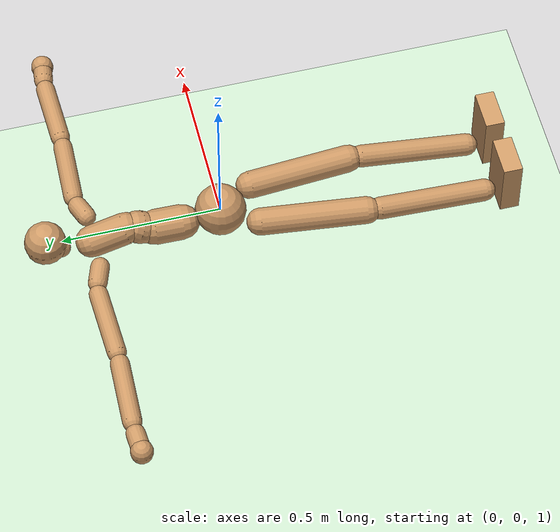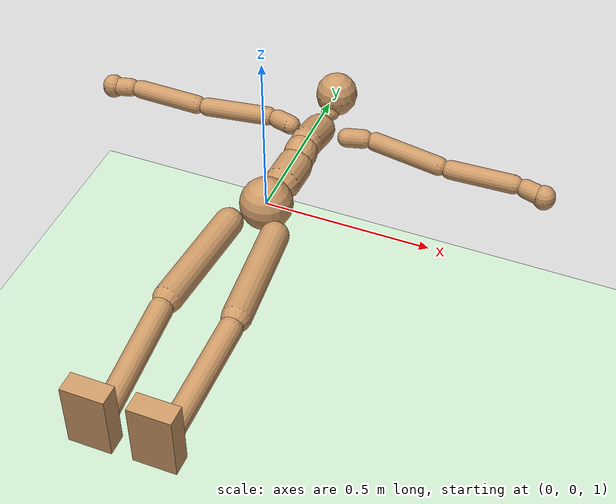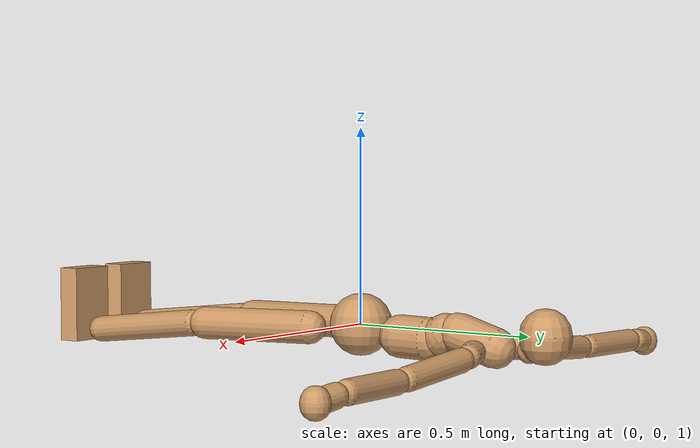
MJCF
<mujoco model="humanoid">
  <compiler angle="degree" inertiafromgeom="true" coordinate="global"/>
  <include file="./common/materials.xml"/>
  <visual>
    <headlight ambient=".4 .4 .4" diffuse=".8 .8 .8" specular="0.1 0.1 0.1"/>
    <map znear=".01"/>
    <quality shadowsize="2048"/>
  </visual>
  <default>
    <joint damping="0.0" armature="0.01" stiffness="0.0" limited="true"/>
    <geom conaffinity="7" condim="1" contype="7" margin="0.001" material="self" rgba="0.8 0.6 .4 1"/>
  </default>
  <statistic extent="3" center="0 0 1"/>
  <option timestep="0.00222222222"/>
  <asset>
    <texture type="skybox" file="./common/sky1.png" gridsize="3 4" gridlayout=".U..LFRB.D.." width="8192" height="8192"/>
    <texture builtin="flat" height="1278" mark="cross" markrgb="1 1 1" name="texgeom" random="0.01" rgb1=".8 .6 .4" rgb2=".8 .6 .4" type="cube" width="127"/>
  </asset>
  <worldbody>
    <light cutoff="100" diffuse="1 1 1" dir="-0 0 -1.3" directional="true" exponent="1" pos="0 0 1.3" specular=".1 .1 .1"/>
    <geom condim="3" friction="1. .1 .1" material="grid" name="floor" pos="0 0 0" rgba=".8 .9 .8 1" size="100 100 .2" type="plane"/>
    <body name="Pelvis" pos="0.0000 0.0000 1.0000" user="-0.0001 -0.0251 0.9883" >
      <joint name="Pelvis" pos="0.0000 0.0000 1.0000" limited="false" type="free" armature="0" damping="0" stiffness="0"/>
      <geom size="0.0800" type="sphere" pos="0.0000 0.0000 1.0000" contype="0" conaffinity="1"/>
      <body name="L_Hip" pos="0.0714 -0.0896 0.9920" user="0.1020 -0.4538 0.9853">
        <joint name="L_Hip_z" type="hinge" pos="0.0714 -0.0896 0.9920" axis="0.0000 0.0000 1.0000" range="-180.0000 180.0000"/>
        <joint name="L_Hip_y" type="hinge" pos="0.0714 -0.0896 0.9920" axis="0.0000 1.0000 0.0000" range="-180.0000 180.0000"/>
        <joint name="L_Hip_x" type="hinge" pos="0.0714 -0.0896 0.9920" axis="1.0000 0.0000 0.0000" range="-180.0000 180.0000"/>
        <geom size="0.0430" type="capsule" fromto="0.0730 -0.1095 0.9916 0.1004 -0.4339 0.9856" contype="0" conaffinity="1"/>
        <body name="L_Knee" pos="0.1020 -0.4538 0.9853" user="0.0905 -0.8371 0.9418">
          <joint name="L_Knee_z" type="hinge" pos="0.1020 -0.4538 0.9853" axis="0.0000 0.0000 1.0000" range="-180.0000 180.0000"/>
          <joint name="L_Knee_y" type="hinge" pos="0.1020 -0.4538 0.9853" axis="0.0000 1.0000 0.0000" range="-180.0000 180.0000"/>
          <joint name="L_Knee_x" type="hinge" pos="0.1020 -0.4538 0.9853" axis="1.0000 0.0000 0.0000" range="-180.0000 180.0000"/>
          <geom size="0.0350" type="capsule" fromto="0.1014 -0.4737 0.9830 0.0911 -0.8173 0.9440" contype="0" conaffinity="1"/>
          <body name="L_Ankle" pos="0.0905 -0.8371 0.9418" user="0.1138 -0.8918 1.0561">
            <joint name="L_Ankle_z" type="hinge" pos="0.0905 -0.8371 0.9418" axis="0.0000 0.0000 1.0000" range="-180.0000 180.0000"/>
            <joint name="L_Ankle_y" type="hinge" pos="0.0905 -0.8371 0.9418" axis="0.0000 1.0000 0.0000" range="-180.0000 180.0000"/>
            <joint name="L_Ankle_x" type="hinge" pos="0.0905 -0.8371 0.9418" axis="1.0000 0.0000 0.0000" range="-180.0000 180.0000"/>
            <geom pos="0.0905 -0.8851 1.0118" size="0.0620 0.1000 0.0300" quat="0.7071 -0.7071 -0.0000 -0.0000" type="box" contype="0" conaffinity="1"/>
            <body name="L_Toe" pos="0.1138 -0.8918 1.0561" user="0.1138 -0.8918 1.0561">
              <joint name="L_Toe_z" type="hinge" pos="0.1138 -0.8918 1.0561" axis="0.0000 0.0000 1.0000" range="-180.0000 180.0000"/>
              <joint name="L_Toe_y" type="hinge" pos="0.1138 -0.8918 1.0561" axis="0.0000 1.0000 0.0000" range="-180.0000 180.0000"/>
              <joint name="L_Toe_x" type="hinge" pos="0.1138 -0.8918 1.0561" axis="1.0000 0.0000 0.0000" range="-180.0000 180.0000"/>
              <geom size="0.0200" type="capsule" fromto="0.1138 -0.8918 1.0601 0.1138 -0.8918 1.0521" contype="0" conaffinity="1"/>
            </body>
          </body>
        </body>
      </body>
      <body name="R_Hip" pos="-0.0690 -0.0890 0.9952" user="-0.1052 -0.4596 0.9860">
        <joint name="R_Hip_z" type="hinge" pos="-0.0690 -0.0890 0.9952" axis="0.0000 0.0000 1.0000" range="-180.0000 180.0000"/>
        <joint name="R_Hip_y" type="hinge" pos="-0.0690 -0.0890 0.9952" axis="0.0000 1.0000 0.0000" range="-180.0000 180.0000"/>
        <joint name="R_Hip_x" type="hinge" pos="-0.0690 -0.0890 0.9952" axis="1.0000 0.0000 0.0000" range="-180.0000 180.0000"/>
        <geom size="0.0430" type="capsule" fromto="-0.0710 -0.1089 0.9947 -0.1032 -0.4397 0.9865" contype="0" conaffinity="1"/>
        <body name="R_Knee" pos="-0.1052 -0.4596 0.9860" user="-0.0911 -0.8432 0.9441">
          <joint name="R_Knee_z" type="hinge" pos="-0.1052 -0.4596 0.9860" axis="0.0000 0.0000 1.0000" range="-180.0000 180.0000"/>
          <joint name="R_Knee_y" type="hinge" pos="-0.1052 -0.4596 0.9860" axis="0.0000 1.0000 0.0000" range="-180.0000 180.0000"/>
          <joint name="R_Knee_x" type="hinge" pos="-0.1052 -0.4596 0.9860" axis="1.0000 0.0000 0.0000" range="-180.0000 180.0000"/>
          <geom size="0.0350" type="capsule" fromto="-0.1044 -0.4795 0.9838 -0.0919 -0.8234 0.9463" contype="0" conaffinity="1"/>
          <body name="R_Ankle" pos="-0.0911 -0.8432 0.9441" user="-0.1132 -0.8897 1.0620">
            <joint name="R_Ankle_z" type="hinge" pos="-0.0911 -0.8432 0.9441" axis="0.0000 0.0000 1.0000" range="-180.0000 180.0000"/>
            <joint name="R_Ankle_y" type="hinge" pos="-0.0911 -0.8432 0.9441" axis="0.0000 1.0000 0.0000" range="-180.0000 180.0000"/>
            <joint name="R_Ankle_x" type="hinge" pos="-0.0911 -0.8432 0.9441" axis="1.0000 0.0000 0.0000" range="-180.0000 180.0000"/>
            <geom pos="-0.0911 -0.8892 1.0118" size="0.0620 0.1000 0.0300" quat="0.7071 -0.7071 0.0000 0.0000" type="box" contype="0" conaffinity="1"/>
            <body name="R_Toe" pos="-0.1132 -0.8897 1.0620" user="-0.1132 -0.8897 1.0620">
              <joint name="R_Toe_z" type="hinge" pos="-0.1132 -0.8897 1.0620" axis="0.0000 0.0000 1.0000" range="-180.0000 180.0000"/>
              <joint name="R_Toe_y" type="hinge" pos="-0.1132 -0.8897 1.0620" axis="0.0000 1.0000 0.0000" range="-180.0000 180.0000"/>
              <joint name="R_Toe_x" type="hinge" pos="-0.1132 -0.8897 1.0620" axis="1.0000 0.0000 0.0000" range="-180.0000 180.0000"/>
              <geom size="0.0200" type="capsule" fromto="-0.1132 -0.8897 1.0660 -0.1132 -0.8897 1.0580" contype="0" conaffinity="1"/>
            </body>
          </body>
        </body>
      </body>
      <body name="Torso" pos="-0.0025 0.1033 0.9778" user="0.0011 0.2309 0.9761">
        <joint name="Torso_z" type="hinge" pos="-0.0025 0.1033 0.9778" axis="0.0000 0.0000 1.0000" range="-180.0000 180.0000"/>
        <joint name="Torso_y" type="hinge" pos="-0.0025 0.1033 0.9778" axis="0.0000 1.0000 0.0000" range="-180.0000 180.0000"/>
        <joint name="Torso_x" type="hinge" pos="-0.0025 0.1033 0.9778" axis="1.0000 0.0000 0.0000" range="-180.0000 180.0000"/>
        <geom size="0.0550" type="capsule" fromto="-0.0019 0.1232 0.9775 0.0005 0.2109 0.9764" contype="0" conaffinity="1"/>
        <body name="Spine" pos="0.0011 0.2309 0.9761" user="0.0031 0.2800 1.0040">
          <joint name="Spine_z" type="hinge" pos="0.0011 0.2309 0.9761" axis="0.0000 0.0000 1.0000" range="-180.0000 180.0000"/>
          <joint name="Spine_y" type="hinge" pos="0.0011 0.2309 0.9761" axis="0.0000 1.0000 0.0000" range="-180.0000 180.0000"/>
          <joint name="Spine_x" type="hinge" pos="0.0011 0.2309 0.9761" axis="1.0000 0.0000 0.0000" range="-180.0000 180.0000"/>
          <geom size="0.0510" type="capsule" fromto="0.0018 0.2483 0.9860 0.0024 0.2626 0.9941" contype="0" conaffinity="1"/>
          <body name="Chest" pos="0.0031 0.2800 1.0040" user="0.0019 0.4272 0.9612">
            <joint name="Chest_z" type="hinge" pos="0.0031 0.2800 1.0040" axis="0.0000 0.0000 1.0000" range="-180.0000 180.0000"/>
            <joint name="Chest_y" type="hinge" pos="0.0031 0.2800 1.0040" axis="0.0000 1.0000 0.0000" range="-180.0000 180.0000"/>
            <joint name="Chest_x" type="hinge" pos="0.0031 0.2800 1.0040" axis="1.0000 0.0000 0.0000" range="-180.0000 180.0000"/>
            <geom size="0.0500" type="capsule" fromto="0.0029 0.2992 0.9984 0.0020 0.4080 0.9667" contype="0" conaffinity="1"/>
            <body name="Neck" pos="0.0011 0.4882 0.9542" user="0.0047 0.5506 1.0044">
              <joint name="Neck_z" type="hinge" pos="0.0011 0.4882 0.9542" axis="0.0000 0.0000 1.0000" range="-180.0000 180.0000"/>
              <joint name="Neck_y" type="hinge" pos="0.0011 0.4882 0.9542" axis="0.0000 1.0000 0.0000" range="-180.0000 180.0000"/>
              <joint name="Neck_x" type="hinge" pos="0.0011 0.4882 0.9542" axis="1.0000 0.0000 0.0000" range="-180.0000 180.0000"/>
              <geom size="0.0300" type="capsule" fromto="0.0020 0.5038 0.9667 0.0038 0.5350 0.9919" contype="0" conaffinity="1"/>
              <body name="Head" pos="0.0047 0.5506 1.0044" user="0.0047 0.5506 1.0044">
                <joint name="Head_z" type="hinge" pos="0.0047 0.5506 1.0044" axis="0.0000 0.0000 1.0000" range="-180.0000 180.0000"/>
                <joint name="Head_y" type="hinge" pos="0.0047 0.5506 1.0044" axis="0.0000 1.0000 0.0000" range="-180.0000 180.0000"/>
                <joint name="Head_x" type="hinge" pos="0.0047 0.5506 1.0044" axis="1.0000 0.0000 0.0000" range="-180.0000 180.0000"/>
                <geom size="0.0650" type="capsule" fromto="0.0047 0.5506 1.0084 0.0047 0.5506 1.0004" contype="0" conaffinity="1"/>
              </body>
            </body>
            <body name="L_Thorax" pos="0.0784 0.3978 0.9671" user="0.1637 0.4295 0.9598">
              <joint name="L_Thorax_z" type="hinge" pos="0.0784 0.3978 0.9671" axis="0.0000 0.0000 1.0000" range="-180.0000 180.0000"/>
              <joint name="L_Thorax_y" type="hinge" pos="0.0784 0.3978 0.9671" axis="0.0000 1.0000 0.0000" range="-180.0000 180.0000"/>
              <joint name="L_Thorax_x" type="hinge" pos="0.0784 0.3978 0.9671" axis="1.0000 0.0000 0.0000" range="-180.0000 180.0000"/>
              <geom size="0.0300" type="capsule" fromto="0.0971 0.4047 0.9655 0.1450 0.4226 0.9614" contype="0" conaffinity="1"/>
              <body name="L_Shoulder" pos="0.1637 0.4295 0.9598" user="0.4150 0.4175 0.9323">
                <joint name="L_Shoulder_z" type="hinge" pos="0.1637 0.4295 0.9598" axis="0.0000 0.0000 1.0000" range="-180.0000 180.0000"/>
                <joint name="L_Shoulder_y" type="hinge" pos="0.1637 0.4295 0.9598" axis="0.0000 1.0000 0.0000" range="-180.0000 180.0000"/>
                <joint name="L_Shoulder_x" type="hinge" pos="0.1637 0.4295 0.9598" axis="1.0000 0.0000 0.0000" range="-180.0000 180.0000"/>
                <geom size="0.0300" type="capsule" fromto="0.1836 0.4286 0.9576 0.3951 0.4185 0.9345" contype="0" conaffinity="1"/>
                <body name="L_Elbow" pos="0.4150 0.4175 0.9323" user="0.6530 0.4265 0.9323">
                  <joint name="L_Elbow_z" type="hinge" pos="0.4150 0.4175 0.9323" axis="0.0000 0.0000 1.0000" range="-180.0000 180.0000"/>
                  <joint name="L_Elbow_y" type="hinge" pos="0.4150 0.4175 0.9323" axis="0.0000 1.0000 0.0000" range="-180.0000 180.0000"/>
                  <joint name="L_Elbow_x" type="hinge" pos="0.4150 0.4175 0.9323" axis="1.0000 0.0000 0.0000" range="-180.0000 180.0000"/>
                  <geom size="0.0300" type="capsule" fromto="0.4349 0.4183 0.9323 0.6330 0.4258 0.9323" contype="0" conaffinity="1"/>
                  <body name="L_Wrist" pos="0.6530 0.4265 0.9323" user="0.7326 0.4169 0.9191">
                    <joint name="L_Wrist_z" type="hinge" pos="0.6530 0.4265 0.9323" axis="0.0000 0.0000 1.0000" range="-180.0000 180.0000"/>
                    <joint name="L_Wrist_y" type="hinge" pos="0.6530 0.4265 0.9323" axis="0.0000 1.0000 0.0000" range="-180.0000 180.0000"/>
                    <joint name="L_Wrist_x" type="hinge" pos="0.6530 0.4265 0.9323" axis="1.0000 0.0000 0.0000" range="-180.0000 180.0000"/>
                    <geom size="0.0300" type="capsule" fromto="0.6726 0.4242 0.9291 0.7131 0.4192 0.9224" contype="0" conaffinity="1"/>
                    <body name="L_Hand" pos="0.7326 0.4169 0.9191" user="0.7326 0.4169 0.9191">
                      <joint name="L_Hand_z" type="hinge" pos="0.7326 0.4169 0.9191" axis="0.0000 0.0000 1.0000" range="-180.0000 180.0000"/>
                      <joint name="L_Hand_y" type="hinge" pos="0.7326 0.4169 0.9191" axis="0.0000 1.0000 0.0000" range="-180.0000 180.0000"/>
                      <joint name="L_Hand_x" type="hinge" pos="0.7326 0.4169 0.9191" axis="1.0000 0.0000 0.0000" range="-180.0000 180.0000"/>
                      <geom size="0.0350" type="capsule" fromto="0.7326 0.4169 0.9231 0.7326 0.4169 0.9151" contype="0" conaffinity="1"/>
                    </body>
                  </body>
                </body>
              </body>
            </body>
            <body name="R_Thorax" pos="-0.0739 0.3956 0.9622" user="-0.1631 0.4284 0.9524">
              <joint name="R_Thorax_z" type="hinge" pos="-0.0739 0.3956 0.9622" axis="0.0000 0.0000 1.0000" range="-180.0000 180.0000"/>
              <joint name="R_Thorax_y" type="hinge" pos="-0.0739 0.3956 0.9622" axis="0.0000 1.0000 0.0000" range="-180.0000 180.0000"/>
              <joint name="R_Thorax_x" type="hinge" pos="-0.0739 0.3956 0.9622" axis="1.0000 0.0000 0.0000" range="-180.0000 180.0000"/>
              <geom size="0.0300" type="capsule" fromto="-0.0926 0.4025 0.9601 -0.1445 0.4215 0.9544" contype="0" conaffinity="1"/>
              <body name="R_Shoulder" pos="-0.1631 0.4284 0.9524" user="-0.4091 0.4152 0.9322">
                <joint name="R_Shoulder_z" type="hinge" pos="-0.1631 0.4284 0.9524" axis="0.0000 0.0000 1.0000" range="-180.0000 180.0000"/>
                <joint name="R_Shoulder_y" type="hinge" pos="-0.1631 0.4284 0.9524" axis="0.0000 1.0000 0.0000" range="-180.0000 180.0000"/>
                <joint name="R_Shoulder_x" type="hinge" pos="-0.1631 0.4284 0.9524" axis="1.0000 0.0000 0.0000" range="-180.0000 180.0000"/>
                <geom size="0.0300" type="capsule" fromto="-0.1830 0.4273 0.9507 -0.3892 0.4163 0.9338" contype="0" conaffinity="1"/>
                <body name="R_Elbow" pos="-0.4091 0.4152 0.9322" user="-0.6543 0.4238 0.9287">
                  <joint name="R_Elbow_z" type="hinge" pos="-0.4091 0.4152 0.9322" axis="0.0000 0.0000 1.0000" range="-180.0000 180.0000"/>
                  <joint name="R_Elbow_y" type="hinge" pos="-0.4091 0.4152 0.9322" axis="0.0000 1.0000 0.0000" range="-180.0000 180.0000"/>
                  <joint name="R_Elbow_x" type="hinge" pos="-0.4091 0.4152 0.9322" axis="1.0000 0.0000 0.0000" range="-180.0000 180.0000"/>
                  <geom size="0.0300" type="capsule" fromto="-0.4291 0.4159 0.9319 -0.6343 0.4231 0.9290" contype="0" conaffinity="1"/>
                  <body name="R_Wrist" pos="-0.6543 0.4238 0.9287" user="-0.7347 0.4166 0.9182">
                    <joint name="R_Wrist_z" type="hinge" pos="-0.6543 0.4238 0.9287" axis="0.0000 0.0000 1.0000" range="-180.0000 180.0000"/>
                    <joint name="R_Wrist_y" type="hinge" pos="-0.6543 0.4238 0.9287" axis="0.0000 1.0000 0.0000" range="-180.0000 180.0000"/>
                    <joint name="R_Wrist_x" type="hinge" pos="-0.6543 0.4238 0.9287" axis="1.0000 0.0000 0.0000" range="-180.0000 180.0000"/>
                    <geom size="0.0300" type="capsule" fromto="-0.6741 0.4221 0.9261 -0.7149 0.4184 0.9208" contype="0" conaffinity="1"/>
                    <body name="R_Hand" pos="-0.7347 0.4166 0.9182" user="-0.7347 0.4166 0.9182">
                      <joint name="R_Hand_z" type="hinge" pos="-0.7347 0.4166 0.9182" axis="0.0000 0.0000 1.0000" range="-180.0000 180.0000"/>
                      <joint name="R_Hand_y" type="hinge" pos="-0.7347 0.4166 0.9182" axis="0.0000 1.0000 0.0000" range="-180.0000 180.0000"/>
                      <joint name="R_Hand_x" type="hinge" pos="-0.7347 0.4166 0.9182" axis="1.0000 0.0000 0.0000" range="-180.0000 180.0000"/>
                      <geom size="0.0350" type="capsule" fromto="-0.7347 0.4166 0.9222 -0.7347 0.4166 0.9142" contype="0" conaffinity="1"/>
                    </body>
                  </body>
                </body>
              </body>
            </body>
          </body>
        </body>
      </body>
    </body>
  </worldbody>
  <actuator>
    <motor name="L_Hip_z" joint="L_Hip_z" gear="1"/>
    <motor name="L_Hip_y" joint="L_Hip_y" gear="1"/>
    <motor name="L_Hip_x" joint="L_Hip_x" gear="1"/>
    <motor name="L_Knee_z" joint="L_Knee_z" gear="1"/>
    <motor name="L_Knee_y" joint="L_Knee_y" gear="1"/>
    <motor name="L_Knee_x" joint="L_Knee_x" gear="1"/>
    <motor name="L_Ankle_z" joint="L_Ankle_z" gear="1"/>
    <motor name="L_Ankle_y" joint="L_Ankle_y" gear="1"/>
    <motor name="L_Ankle_x" joint="L_Ankle_x" gear="1"/>
    <motor name="L_Toe_z" joint="L_Toe_z" gear="1"/>
    <motor name="L_Toe_y" joint="L_Toe_y" gear="1"/>
    <motor name="L_Toe_x" joint="L_Toe_x" gear="1"/>
    <motor name="R_Hip_z" joint="R_Hip_z" gear="1"/>
    <motor name="R_Hip_y" joint="R_Hip_y" gear="1"/>
    <motor name="R_Hip_x" joint="R_Hip_x" gear="1"/>
    <motor name="R_Knee_z" joint="R_Knee_z" gear="1"/>
    <motor name="R_Knee_y" joint="R_Knee_y" gear="1"/>
    <motor name="R_Knee_x" joint="R_Knee_x" gear="1"/>
    <motor name="R_Ankle_z" joint="R_Ankle_z" gear="1"/>
    <motor name="R_Ankle_y" joint="R_Ankle_y" gear="1"/>
    <motor name="R_Ankle_x" joint="R_Ankle_x" gear="1"/>
    <motor name="R_Toe_z" joint="R_Toe_z" gear="1"/>
    <motor name="R_Toe_y" joint="R_Toe_y" gear="1"/>
    <motor name="R_Toe_x" joint="R_Toe_x" gear="1"/>
    <motor name="Torso_z" joint="Torso_z" gear="1"/>
    <motor name="Torso_y" joint="Torso_y" gear="1"/>
    <motor name="Torso_x" joint="Torso_x" gear="1"/>
    <motor name="Spine_z" joint="Spine_z" gear="1"/>
    <motor name="Spine_y" joint="Spine_y" gear="1"/>
    <motor name="Spine_x" joint="Spine_x" gear="1"/>
    <motor name="Chest_z" joint="Chest_z" gear="1"/>
    <motor name="Chest_y" joint="Chest_y" gear="1"/>
    <motor name="Chest_x" joint="Chest_x" gear="1"/>
    <motor name="Neck_z" joint="Neck_z" gear="1"/>
    <motor name="Neck_y" joint="Neck_y" gear="1"/>
    <motor name="Neck_x" joint="Neck_x" gear="1"/>
    <motor name="Head_z" joint="Head_z" gear="1"/>
    <motor name="Head_y" joint="Head_y" gear="1"/>
    <motor name="Head_x" joint="Head_x" gear="1"/>
    <motor name="L_Thorax_z" joint="L_Thorax_z" gear="1"/>
    <motor name="L_Thorax_y" joint="L_Thorax_y" gear="1"/>
    <motor name="L_Thorax_x" joint="L_Thorax_x" gear="1"/>
    <motor name="L_Shoulder_z" joint="L_Shoulder_z" gear="1"/>
    <motor name="L_Shoulder_y" joint="L_Shoulder_y" gear="1"/>
    <motor name="L_Shoulder_x" joint="L_Shoulder_x" gear="1"/>
    <motor name="L_Elbow_z" joint="L_Elbow_z" gear="1"/>
    <motor name="L_Elbow_y" joint="L_Elbow_y" gear="1"/>
    <motor name="L_Elbow_x" joint="L_Elbow_x" gear="1"/>
    <motor name="L_Wrist_z" joint="L_Wrist_z" gear="1"/>
    <motor name="L_Wrist_y" joint="L_Wrist_y" gear="1"/>
    <motor name="L_Wrist_x" joint="L_Wrist_x" gear="1"/>
    <motor name="L_Hand_z" joint="L_Hand_z" gear="1"/>
    <motor name="L_Hand_y" joint="L_Hand_y" gear="1"/>
    <motor name="L_Hand_x" joint="L_Hand_x" gear="1"/>
    <motor name="R_Thorax_z" joint="R_Thorax_z" gear="1"/>
    <motor name="R_Thorax_y" joint="R_Thorax_y" gear="1"/>
    <motor name="R_Thorax_x" joint="R_Thorax_x" gear="1"/>
    <motor name="R_Shoulder_z" joint="R_Shoulder_z" gear="1"/>
    <motor name="R_Shoulder_y" joint="R_Shoulder_y" gear="1"/>
    <motor name="R_Shoulder_x" joint="R_Shoulder_x" gear="1"/>
    <motor name="R_Elbow_z" joint="R_Elbow_z" gear="1"/>
    <motor name="R_Elbow_y" joint="R_Elbow_y" gear="1"/>
    <motor name="R_Elbow_x" joint="R_Elbow_x" gear="1"/>
    <motor name="R_Wrist_z" joint="R_Wrist_z" gear="1"/>
    <motor name="R_Wrist_y" joint="R_Wrist_y" gear="1"/>
    <motor name="R_Wrist_x" joint="R_Wrist_x" gear="1"/>
    <motor name="R_Hand_z" joint="R_Hand_z" gear="1"/>
    <motor name="R_Hand_y" joint="R_Hand_y" gear="1"/>
    <motor name="R_Hand_x" joint="R_Hand_x" gear="1"/>
  </actuator>
</mujoco>

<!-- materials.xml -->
<!--
Common textures, colors and materials to be used throughout this suite. Some
materials such as xxx_highlight are activated on occurence of certain events,
for example receiving a positive reward.
-->
<mujoco>
  <asset>
    <texture name="grid" type="2d" builtin="checker" rgb1=".1 .2 .3" rgb2=".2 .3 .4" width="300" height="300" mark="edge" markrgb=".2 .3 .4"/>
    <material name="grid" texture="grid" texrepeat="1 1" texuniform="true" reflectance=".2"/>
    <texture builtin="checker" height="100" name="texplane" rgb1="0 0 0" rgb2=".8 .8 .8" type="2d" width="100"/>
    <texture name="grass" file="./common/grass.png" type="2d"/>

    <texture name="grid_new" type="2d" builtin="checker" rgb1=".1 .3 .2" rgb2=".2 .4 .3" width="1000" height="1000" mark="none" markrgb=".8 .6 .4"/>
    <material name="grid_new" texture="grid_new" texrepeat="0.2 0.2" texuniform="true" reflectance=".2"/>
    <material name="MatPlane" reflectance="0.5" shininess="1" specular="1" texrepeat="60 60" texture="texplane"/>
    <material name="GrassPlane" reflectance="0.0" shininess="1" specular="1" texrepeat="400 400" texture="grass"/>
    <material name="self" rgba=".7 .5 .3 1"/>
    <material name="self_default" rgba=".7 .5 .3 1"/>
    <material name="self_highlight" rgba="0 .5 .3 1"/>
    <material name="effector" rgba=".7 .4 .2 1"/>
    <material name="effector_default" rgba=".7 .4 .2 1"/>
    <material name="effector_highlight" rgba="0 .5 .3 1"/>
    <material name="decoration" rgba=".3 .5 .7 1"/>
    <material name="eye" rgba="0 .2 1 1"/>
    <material name="target" rgba=".6 .3 .3 1"/>
    <material name="target_default" rgba=".6 .3 .3 1"/>
    <material name="target_highlight" rgba=".6 .3 .3 .4"/>
    <material name="expert" rgba=".6 .3 .3 .4"/>
  </asset>
</mujoco>
